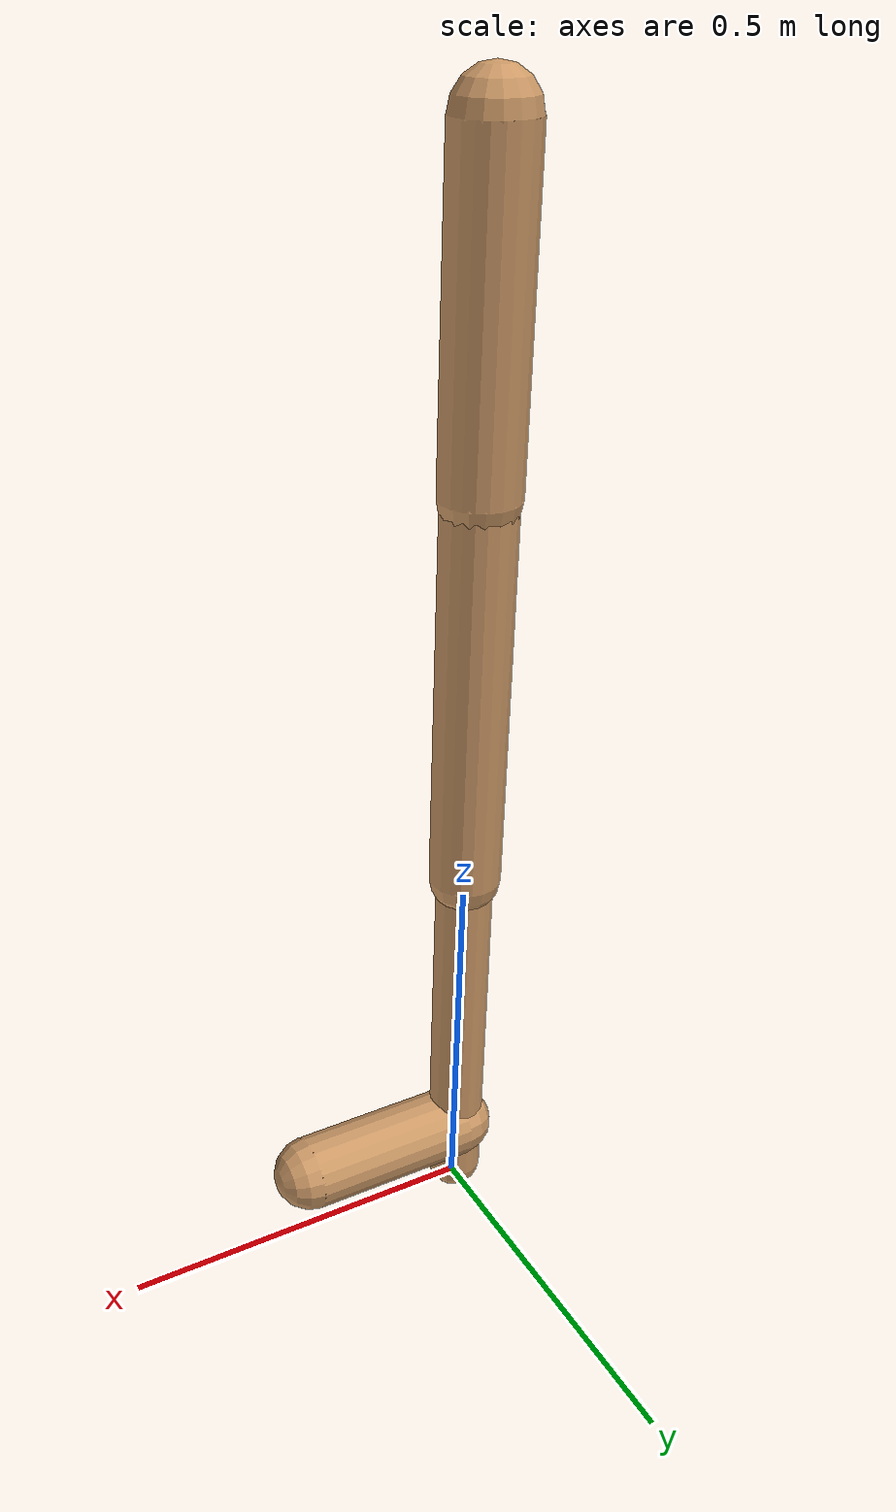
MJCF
<mujoco model="walker2d">
  <compiler angle="degree" coordinate="global" inertiafromgeom="true" />
  <default>
    <joint armature="0.01" damping=".1" limited="true" />
    <geom conaffinity="0" condim="3" contype="1" density="1000" friction="0.8 .1 .1" rgba="0.8 0.6 .4 1" />
  </default>
  <option integrator="RK4" timestep="0.002" />
  <worldbody>

    <body name="torso" pos="0 0 0.14794706934651133">
      <joint armature="0" axis="1 0 0" damping="0" limited="false" name="ignorex" pos="0 0 0" stiffness="0" type="slide" />
      <joint armature="0" axis="0 0 1" damping="0" limited="false" name="ignorez" pos="0 0 0" ref="1.25" stiffness="0" type="slide" />
      <joint armature="0" axis="0 1 0" damping="0" limited="false" name="ignorey" pos="0 0 0" stiffness="0" type="hinge" />
      <geom fromto="0 0 1.45 0 0 1.05" name="torso_geom" size="0.05076756115680862" type="capsule" />
      <body name="thigh">
        <joint axis="0 -1 0" name="thigh_joint" pos="0 0 1.05" range="-150 0" type="hinge" />
        <geom fromto="0.0 0.0 1.05 0.0 0.0 0.5299198092569156" name="thigh_geom" size="0.04734999184775207" type="capsule" />
        <body name="leg" pos="0.0 0.0 -0.07008019074308436">
          <joint axis="0 -1 0" name="leg_joint" pos="0 0 0.6" range="-150 0" type="hinge" />
          <geom fromto="0.0 0.0 0.6 0.0 0.0 0.02213312139657299" name="leg_geom" size="0.03787999347820166" type="capsule" />
          <body name="foot" pos="0.0 0.0 -0.07786687860342702">
            <joint axis="0 -1 0" name="foot_joint" pos="0 0 0.1" range="-45 45" type="hinge" />
            <geom fromto="-0.0 0.0 0.10000000000000002 0.23595217910926058 0.0 0.10000000000000002" name="foot_geom" size="0.05128793989958214" type="capsule" />
          </body>
        </body>
      </body>

      <body name="thigh_left">
        <joint axis="0 -1 0" name="thigh_left_joint" pos="0 0 1.05" range="-150 0" type="hinge" />
        <geom fromto="0.0 0.0 1.05 0.0 0.0 0.5299198092569156" name="thigh_left_geom" rgba=".7 .3 .6 1" size="0.04734999184775207" type="capsule" />
        <body name="leg_left" pos="0.0 0.0 -0.07008019074308436">
          <joint axis="0 -1 0" name="leg_left_joint" pos="0 0 0.6" range="-150 0" type="hinge" />
          <geom fromto="0.0 0.0 0.6 0.0 0.0 0.02213312139657299" name="leg_left_geom" rgba=".7 .3 .6 1" size="0.03787999347820166" type="capsule" />
          <body name="foot_left" pos="0.0 0.0 -0.07786687860342702">
            <joint axis="0 -1 0" name="foot_left_joint" pos="0 0 0.1" range="-45 45" type="hinge" />
            <geom fromto="-0.0 0.0 0.10000000000000002 0.23595217910926058 0.0 0.10000000000000002" name="foot_left_geom" rgba=".7 .3 .6 1" size="0.05128793989958214" type="capsule" />
          </body>
        </body>
      </body>
    </body>
  </worldbody>
  <actuator>

    <motor ctrllimited="true" ctrlrange="-1.0 1.0" gear="100" joint="thigh_joint" />
    <motor ctrllimited="true" ctrlrange="-1.0 1.0" gear="100" joint="leg_joint" />
    <motor ctrllimited="true" ctrlrange="-1.0 1.0" gear="100" joint="foot_joint" />
    <motor ctrllimited="true" ctrlrange="-1.0 1.0" gear="100" joint="thigh_left_joint" />
    <motor ctrllimited="true" ctrlrange="-1.0 1.0" gear="100" joint="leg_left_joint" />
    <motor ctrllimited="true" ctrlrange="-1.0 1.0" gear="100" joint="foot_left_joint" />

  </actuator>
</mujoco>
